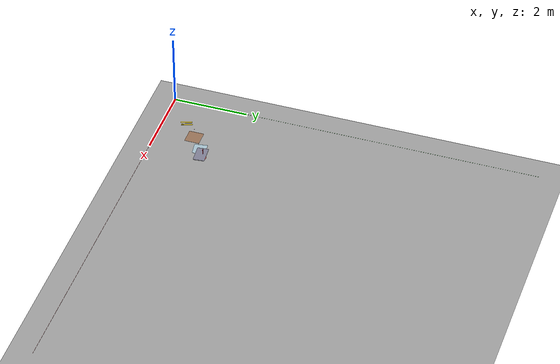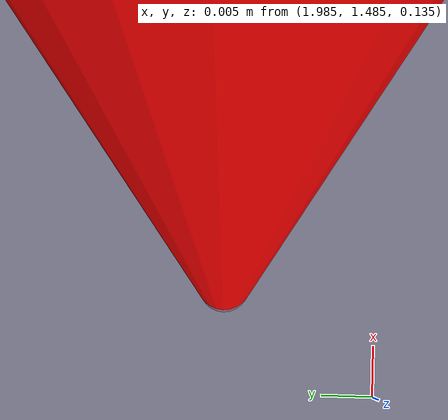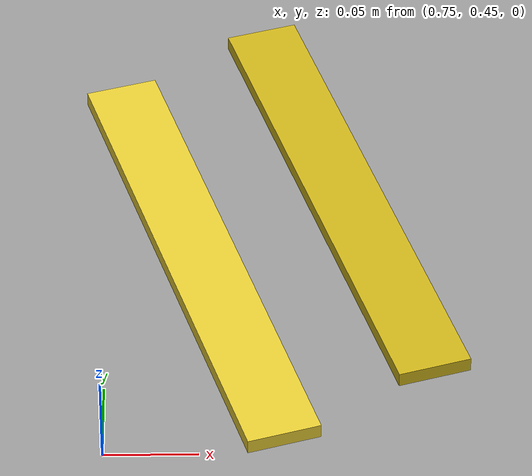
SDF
<?xml version="1.0" ?>
<sdf version="1.6">
  <world name="puzzlebot_terrain">

    <!-- ── Physics ──────────────────────────────────────────────────── -->
    <physics type="ode">
      <max_step_size>0.001</max_step_size>
      <real_time_factor>1.0</real_time_factor>
      <real_time_update_rate>1000</real_time_update_rate>
      <ode>
        <solver>
          <type>quick</type>
          <iters>100</iters>
        </solver>
      </ode>
    </physics>

    <!-- ── Lighting ─────────────────────────────────────────────────── -->
    <include>
      <uri>model://sun</uri>
    </include>

    <!-- ── Ground Plane ─────────────────────────────────────────────── -->
    <model name="ground_plane">
      <static>true</static>
      <link name="link">
        <collision name="collision">
          <geometry>
            <plane>
              <normal>0 0 1</normal>
              <size>20 20</size>
            </plane>
          </geometry>
          <surface>
            <friction>
              <ode>
                <mu>0.8</mu>
                <mu2>0.8</mu2>
              </ode>
            </friction>
          </surface>
        </collision>
        <visual name="visual">
          <geometry>
            <plane>
              <normal>0 0 1</normal>
              <size>20 20</size>
            </plane>
          </geometry>
          <material>
            <ambient>0.3 0.3 0.3 1</ambient>
            <diffuse>0.6 0.6 0.6 1</diffuse>
          </material>
        </visual>
      </link>
    </model>

    <!-- ── Grid lines on ground (visual reference) ──────────────────── -->
    <model name="grid_marker_x">
      <static>true</static>
      <pose>5 0 0.001 0 0 0</pose>
      <link name="link">
        <visual name="visual">
          <geometry>
            <box>
              <size>10 0.005 0.001</size>
            </box>
          </geometry>
          <material>
            <ambient>0.8 0.2 0.2 0.5</ambient>
          </material>
        </visual>
      </link>
    </model>

    <model name="grid_marker_y">
      <static>true</static>
      <pose>0 5 0.001 0 0 0</pose>
      <link name="link">
        <visual name="visual">
          <geometry>
            <box>
              <size>0.005 10 0.001</size>
            </box>
          </geometry>
          <material>
            <ambient>0.2 0.8 0.2 0.5</ambient>
          </material>
        </visual>
      </link>
    </model>

    <!-- ── Goal Marker at (2.0, 1.5) ────────────────────────────────── -->
    <model name="goal_marker">
      <static>true</static>
      <pose>2.0 1.5 0.001 0 0 0</pose>
      <link name="link">
        <visual name="base">
          <geometry>
            <cylinder>
              <radius>0.08</radius>
              <length>0.002</length>
            </cylinder>
          </geometry>
          <material>
            <ambient>1.0 0.2 0.2 0.8</ambient>
            <diffuse>1.0 0.3 0.3 0.8</diffuse>
          </material>
        </visual>
        <visual name="pole">
          <pose>0 0 0.15 0 0 0</pose>
          <geometry>
            <cylinder>
              <radius>0.005</radius>
              <length>0.30</length>
            </cylinder>
          </geometry>
          <material>
            <ambient>1.0 0.0 0.0 1.0</ambient>
          </material>
        </visual>
        <visual name="flag">
          <pose>0.02 0 0.28 0 0 0</pose>
          <geometry>
            <box>
              <size>0.04 0.002 0.03</size>
            </box>
          </geometry>
          <material>
            <ambient>1.0 0.0 0.0 1.0</ambient>
          </material>
        </visual>
      </link>
    </model>

    <!--  TERRAIN PERTURBATION FEATURES                                -->

    <!-- ── Bump Strip 1 (speed bumps at x ≈ 0.8) ───────────────────── -->
    <model name="bump_1">
      <static>true</static>
      <pose>0.8 0.6 0.004 0 0 0.3</pose>
      <link name="link">
        <collision name="collision">
          <geometry>
            <box>
              <size>0.04 0.30 0.008</size>
            </box>
          </geometry>
          <surface>
            <friction><ode><mu>1.2</mu><mu2>1.2</mu2></ode></friction>
          </surface>
        </collision>
        <visual name="visual">
          <geometry>
            <box>
              <size>0.04 0.30 0.008</size>
            </box>
          </geometry>
          <material>
            <ambient>0.8 0.7 0.1 1.0</ambient>
            <diffuse>0.9 0.8 0.2 1.0</diffuse>
          </material>
        </visual>
      </link>
    </model>

    <model name="bump_2">
      <static>true</static>
      <pose>0.88 0.65 0.004 0 0 0.3</pose>
      <link name="link">
        <collision name="collision">
          <geometry><box><size>0.04 0.30 0.008</size></box></geometry>
          <surface><friction><ode><mu>1.2</mu><mu2>1.2</mu2></ode></friction></surface>
        </collision>
        <visual name="visual">
          <geometry><box><size>0.04 0.30 0.008</size></box></geometry>
          <material><ambient>0.8 0.7 0.1 1.0</ambient></material>
        </visual>
      </link>
    </model>

    <!-- ── Rough Patch (high-friction zone at x ≈ 1.3) ──────────────── -->
    <model name="rough_patch">
      <static>true</static>
      <pose>1.3 1.0 0.001 0 0 0</pose>
      <link name="link">
        <collision name="collision">
          <geometry>
            <box>
              <size>0.40 0.40 0.002</size>
            </box>
          </geometry>
          <surface>
            <friction><ode><mu>3.0</mu><mu2>3.0</mu2></ode></friction>
          </surface>
        </collision>
        <visual name="visual">
          <geometry>
            <box>
              <size>0.40 0.40 0.002</size>
            </box>
          </geometry>
          <material>
            <ambient>0.5 0.35 0.2 0.7</ambient>
            <diffuse>0.6 0.4 0.25 0.7</diffuse>
          </material>
        </visual>
      </link>
    </model>

    <!-- ── Slick Patch (low-friction ice at x ≈ 1.7) ────────────────── -->
    <model name="slick_patch">
      <static>true</static>
      <pose>1.7 1.3 0.001 0 0 0.15</pose>
      <link name="link">
        <collision name="collision">
          <geometry>
            <box>
              <size>0.35 0.35 0.002</size>
            </box>
          </geometry>
          <surface>
            <friction><ode><mu>0.05</mu><mu2>0.05</mu2></ode></friction>
          </surface>
        </collision>
        <visual name="visual">
          <geometry>
            <box>
              <size>0.35 0.35 0.002</size>
            </box>
          </geometry>
          <material>
            <ambient>0.6 0.8 0.9 0.5</ambient>
            <diffuse>0.7 0.9 1.0 0.5</diffuse>
          </material>
        </visual>
      </link>
    </model>

    <!-- ── Ramp (slight incline near goal) ──────────────────────────── -->
    <model name="ramp">
      <static>true</static>
      <pose>1.9 1.4 0.01 0 -0.06 0.1</pose>
      <link name="link">
        <collision name="collision">
          <geometry>
            <box>
              <size>0.50 0.30 0.02</size>
            </box>
          </geometry>
          <surface>
            <friction><ode><mu>1.0</mu><mu2>1.0</mu2></ode></friction>
          </surface>
        </collision>
        <visual name="visual">
          <geometry>
            <box>
              <size>0.50 0.30 0.02</size>
            </box>
          </geometry>
          <material>
            <ambient>0.4 0.4 0.5 0.8</ambient>
            <diffuse>0.5 0.5 0.6 0.8</diffuse>
          </material>
        </visual>
      </link>
    </model>

    <!-- ── Small obstacles (pebbles) ────────────────────────────────── -->
    <model name="pebble_1">
      <static>true</static>
      <pose>1.0 0.9 0.005 0 0 0</pose>
      <link name="link">
        <collision name="c"><geometry><sphere><radius>0.005</radius></sphere></geometry></collision>
        <visual name="v">
          <geometry><sphere><radius>0.005</radius></sphere></geometry>
          <material><ambient>0.4 0.4 0.4 1</ambient></material>
        </visual>
      </link>
    </model>

    <model name="pebble_2">
      <static>true</static>
      <pose>1.1 1.1 0.005 0 0 0</pose>
      <link name="link">
        <collision name="c"><geometry><sphere><radius>0.006</radius></sphere></geometry></collision>
        <visual name="v">
          <geometry><sphere><radius>0.006</radius></sphere></geometry>
          <material><ambient>0.45 0.4 0.35 1</ambient></material>
        </visual>
      </link>
    </model>

    <model name="pebble_3">
      <static>true</static>
      <pose>1.5 1.2 0.005 0 0 0</pose>
      <link name="link">
        <collision name="c"><geometry><sphere><radius>0.004</radius></sphere></geometry></collision>
        <visual name="v">
          <geometry><sphere><radius>0.004</radius></sphere></geometry>
          <material><ambient>0.5 0.45 0.4 1</ambient></material>
        </visual>
      </link>
    </model>

    <!-- ── Camera position ──────────────────────────────────────────── -->
    <gui>
      <camera name="user_camera">
        <pose>1.0 -2.0 3.0 0 0.7 1.57</pose>
      </camera>
    </gui>

  </world>
</sdf>
